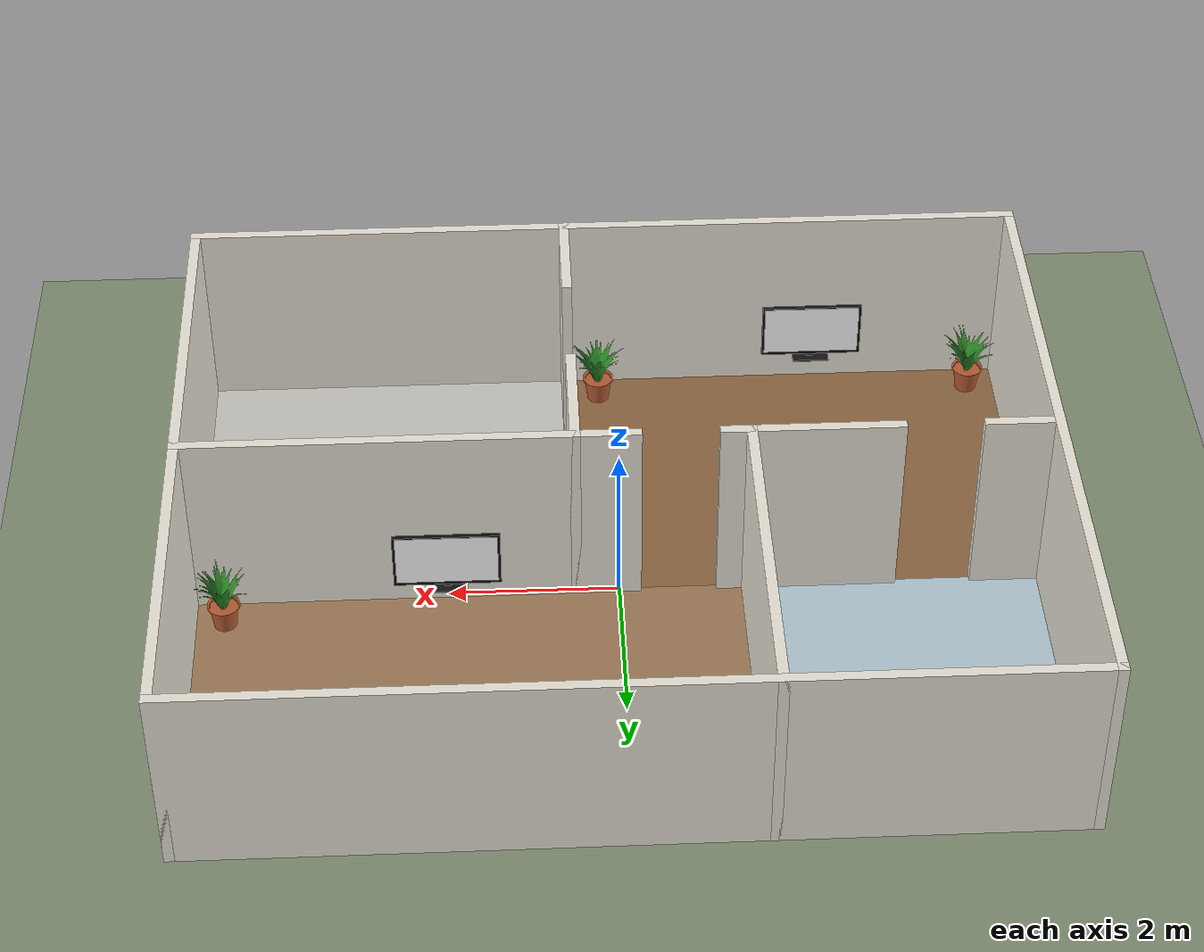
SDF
<sdf version="1.9">
 <world name="house">
  <physics name="3ms" type="ignored">
   <max_step_size>0.003</max_step_size>
   <real_time_factor>1.0</real_time_factor>
   <real_time_update_rate>333.3333</real_time_update_rate>
  </physics>
  <plugin name="gz::sim::systems::Physics" filename="gz-sim-physics-system"/>
  <plugin name="gz::sim::systems::UserCommands" filename="gz-sim-user-commands-system"/>
  <plugin name="gz::sim::systems::SceneBroadcaster" filename="gz-sim-scene-broadcaster-system"/>
  <plugin name="gz::sim::systems::Contact" filename="gz-sim-contact-system"/>
  <gravity>0 0 -9.8</gravity>
  <magnetic_field>6e-06 2.3e-05 -4.2e-05</magnetic_field>
  <atmosphere type="adiabatic"/>
  <scene>
   <ambient>0.6 0.6 0.6 1</ambient>
   <background>0.75 0.8 0.85 1</background>
   <shadows>false</shadows>
   <grid>false</grid>
  </scene>
  <light name="sun" type="directional">
   <cast_shadows>false</cast_shadows>
   <pose>0 0 10 0 0 0</pose>
   <diffuse>0.85 0.85 0.82 1</diffuse>
   <specular>0.2 0.2 0.2 1</specular>
   <direction>-0.3 0.2 -0.9</direction>
  </light>
  <model name="ground_plane">
   <static>true</static>
   <link name="link">
    <collision name="collision">
     <geometry><plane><normal>0 0 1</normal><size>40 40</size></plane></geometry>
    </collision>
    <visual name="visual">
     <geometry><plane><normal>0 0 1</normal><size>40 40</size></plane></geometry>
     <material><ambient>0.5 0.55 0.45 1</ambient><diffuse>0.5 0.55 0.45 1</diffuse></material>
    </visual>
   </link>
  </model>
  <model name="floor_living">
   <static>true</static>
   <pose>-2.25 -2 0.005 0 0 0</pose>
   <link name="link">
    <visual name="visual">
     <geometry><box><size>5.5 4 0.01</size></box></geometry>
     <material>
      <ambient>0.55 0.4 0.26 1</ambient>
      <diffuse>0.55 0.4 0.26 1</diffuse>
      <specular>0.1 0.1 0.1 1</specular>
     </material>
    </visual>
   </link>
  </model>
  <model name="floor_kitchen">
   <static>true</static>
   <pose>2.75 -2 0.005 0 0 0</pose>
   <link name="link">
    <visual name="visual">
     <geometry><box><size>4.5 4 0.01</size></box></geometry>
     <material>
      <ambient>0.78 0.77 0.74 1</ambient>
      <diffuse>0.78 0.77 0.74 1</diffuse>
      <specular>0.1 0.1 0.1 1</specular>
     </material>
    </visual>
   </link>
  </model>
  <model name="floor_bathroom">
   <static>true</static>
   <pose>-3.25 2 0.005 0 0 0</pose>
   <link name="link">
    <visual name="visual">
     <geometry><box><size>3.5 4 0.01</size></box></geometry>
     <material>
      <ambient>0.7 0.78 0.82 1</ambient>
      <diffuse>0.7 0.78 0.82 1</diffuse>
      <specular>0.1 0.1 0.1 1</specular>
     </material>
    </visual>
   </link>
  </model>
  <model name="floor_bedroom">
   <static>true</static>
   <pose>1.75 2 0.005 0 0 0</pose>
   <link name="link">
    <visual name="visual">
     <geometry><box><size>6.5 4 0.01</size></box></geometry>
     <material>
      <ambient>0.62 0.48 0.34 1</ambient>
      <diffuse>0.62 0.48 0.34 1</diffuse>
      <specular>0.1 0.1 0.1 1</specular>
     </material>
    </visual>
   </link>
  </model>
  <model name="wall_0">
   <static>true</static>
   <pose>0 -4 1.2 0 0 0</pose>
   <link name="link">
    <collision name="collision"><geometry><box><size>10.12 0.12 2.4</size></box></geometry></collision>
    <visual name="visual">
     <geometry><box><size>10.12 0.12 2.4</size></box></geometry>
     <material>
      <ambient>0.85 0.83 0.78 1</ambient>
      <diffuse>0.92 0.90 0.85 1</diffuse>
      <specular>0.05 0.05 0.05 1</specular>
     </material>
    </visual>
   </link>
  </model>
  <model name="wall_1">
   <static>true</static>
   <pose>0 4 1.2 0 0 0</pose>
   <link name="link">
    <collision name="collision"><geometry><box><size>10.12 0.12 2.4</size></box></geometry></collision>
    <visual name="visual">
     <geometry><box><size>10.12 0.12 2.4</size></box></geometry>
     <material>
      <ambient>0.85 0.83 0.78 1</ambient>
      <diffuse>0.92 0.90 0.85 1</diffuse>
      <specular>0.05 0.05 0.05 1</specular>
     </material>
    </visual>
   </link>
  </model>
  <model name="wall_2">
   <static>true</static>
   <pose>-5 0 1.2 0 0 1.5708</pose>
   <link name="link">
    <collision name="collision"><geometry><box><size>8.12 0.12 2.4</size></box></geometry></collision>
    <visual name="visual">
     <geometry><box><size>8.12 0.12 2.4</size></box></geometry>
     <material>
      <ambient>0.85 0.83 0.78 1</ambient>
      <diffuse>0.92 0.90 0.85 1</diffuse>
      <specular>0.05 0.05 0.05 1</specular>
     </material>
    </visual>
   </link>
  </model>
  <model name="wall_3">
   <static>true</static>
   <pose>5 0 1.2 0 0 1.5708</pose>
   <link name="link">
    <collision name="collision"><geometry><box><size>8.12 0.12 2.4</size></box></geometry></collision>
    <visual name="visual">
     <geometry><box><size>8.12 0.12 2.4</size></box></geometry>
     <material>
      <ambient>0.85 0.83 0.78 1</ambient>
      <diffuse>0.92 0.90 0.85 1</diffuse>
      <specular>0.05 0.05 0.05 1</specular>
     </material>
    </visual>
   </link>
  </model>
  <model name="wall_4">
   <static>true</static>
   <pose>-4.6 0 1.2 0 0 0</pose>
   <link name="link">
    <collision name="collision"><geometry><box><size>0.92 0.12 2.4</size></box></geometry></collision>
    <visual name="visual">
     <geometry><box><size>0.92 0.12 2.4</size></box></geometry>
     <material>
      <ambient>0.85 0.83 0.78 1</ambient>
      <diffuse>0.92 0.90 0.85 1</diffuse>
      <specular>0.05 0.05 0.05 1</specular>
     </material>
    </visual>
   </link>
  </model>
  <model name="wall_5">
   <static>true</static>
   <pose>-2.2 0 1.2 0 0 0</pose>
   <link name="link">
    <collision name="collision"><geometry><box><size>2.12 0.12 2.4</size></box></geometry></collision>
    <visual name="visual">
     <geometry><box><size>2.12 0.12 2.4</size></box></geometry>
     <material>
      <ambient>0.85 0.83 0.78 1</ambient>
      <diffuse>0.92 0.90 0.85 1</diffuse>
      <specular>0.05 0.05 0.05 1</specular>
     </material>
    </visual>
   </link>
  </model>
  <model name="wall_6">
   <static>true</static>
   <pose>2.4 0 1.2 0 0 0</pose>
   <link name="link">
    <collision name="collision"><geometry><box><size>5.32 0.12 2.4</size></box></geometry></collision>
    <visual name="visual">
     <geometry><box><size>5.32 0.12 2.4</size></box></geometry>
     <material>
      <ambient>0.85 0.83 0.78 1</ambient>
      <diffuse>0.92 0.90 0.85 1</diffuse>
      <specular>0.05 0.05 0.05 1</specular>
     </material>
    </visual>
   </link>
  </model>
  <model name="wall_7">
   <static>true</static>
   <pose>0.5 -3.4 1.2 0 0 1.5708</pose>
   <link name="link">
    <collision name="collision"><geometry><box><size>1.32 0.12 2.4</size></box></geometry></collision>
    <visual name="visual">
     <geometry><box><size>1.32 0.12 2.4</size></box></geometry>
     <material>
      <ambient>0.85 0.83 0.78 1</ambient>
      <diffuse>0.92 0.90 0.85 1</diffuse>
      <specular>0.05 0.05 0.05 1</specular>
     </material>
    </visual>
   </link>
  </model>
  <model name="wall_8">
   <static>true</static>
   <pose>0.5 -0.7 1.2 0 0 1.5708</pose>
   <link name="link">
    <collision name="collision"><geometry><box><size>1.52 0.12 2.4</size></box></geometry></collision>
    <visual name="visual">
     <geometry><box><size>1.52 0.12 2.4</size></box></geometry>
     <material>
      <ambient>0.85 0.83 0.78 1</ambient>
      <diffuse>0.92 0.90 0.85 1</diffuse>
      <specular>0.05 0.05 0.05 1</specular>
     </material>
    </visual>
   </link>
  </model>
  <model name="wall_9">
   <static>true</static>
   <pose>-1.5 2 1.2 0 0 1.5708</pose>
   <link name="link">
    <collision name="collision"><geometry><box><size>4.12 0.12 2.4</size></box></geometry></collision>
    <visual name="visual">
     <geometry><box><size>4.12 0.12 2.4</size></box></geometry>
     <material>
      <ambient>0.85 0.83 0.78 1</ambient>
      <diffuse>0.92 0.90 0.85 1</diffuse>
      <specular>0.05 0.05 0.05 1</specular>
     </material>
    </visual>
   </link>
  </model>
  <include>
   <name>tv_1</name>
   <uri>model://tv</uri>
   <pose>-2.6 -3.75 0.45 0 0 1.5708</pose>
   <static>true</static>
   <plugin filename="gz-sim-label-system" name="gz::sim::systems::Label"><label>62</label></plugin>
  </include>
  <include>
   <name>potted_plant_1</name>
   <uri>model://potted_plant</uri>
   <pose>-4.6 -3.6 0 0 0 0</pose>
   <static>true</static>
   <plugin filename="gz-sim-label-system" name="gz::sim::systems::Label"><label>58</label></plugin>
  </include>
  <include>
   <name>potted_plant_2</name>
   <uri>model://potted_plant</uri>
   <pose>0.1 -3.6 0 0 0 1</pose>
   <static>true</static>
   <plugin filename="gz-sim-label-system" name="gz::sim::systems::Label"><label>58</label></plugin>
  </include>
  <include>
   <name>tv_2</name>
   <uri>model://tv</uri>
   <pose>2 0.35 0.45 0 0 1.5708</pose>
   <static>true</static>
   <plugin filename="gz-sim-label-system" name="gz::sim::systems::Label"><label>62</label></plugin>
  </include>
  <include>
   <name>potted_plant_3</name>
   <uri>model://potted_plant</uri>
   <pose>4.6 0.4 0 0 0 2</pose>
   <static>true</static>
   <plugin filename="gz-sim-label-system" name="gz::sim::systems::Label"><label>58</label></plugin>
  </include>
 </world>
</sdf>

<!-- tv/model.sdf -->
<!-- 55-inch flat-screen TV. Model origin: centre of the bottom of the foot, screen faces +X. -->
<sdf version="1.9">
  <model name="tv">
    <static>true</static>
    <link name="link">
      <collision name="collision">
        <pose>0 0 0.42 0 0 0</pose>
        <geometry><box><size>0.06 1.24 0.72</size></box></geometry>
      </collision>
      <visual name="foot">
        <pose>0 0 0.01 0 0 0</pose>
        <geometry><box><size>0.22 0.45 0.02</size></box></geometry>
        <material><ambient>0.05 0.05 0.05 1</ambient><diffuse>0.08 0.08 0.08 1</diffuse></material>
      </visual>
      <visual name="neck">
        <pose>-0.01 0 0.05 0 0 0</pose>
        <geometry><box><size>0.04 0.08 0.08</size></box></geometry>
        <material><ambient>0.05 0.05 0.05 1</ambient><diffuse>0.08 0.08 0.08 1</diffuse></material>
      </visual>
      <visual name="bezel">
        <pose>0 0 0.42 0 0 0</pose>
        <geometry><box><size>0.05 1.24 0.72</size></box></geometry>
        <material>
          <ambient>0.02 0.02 0.02 1</ambient>
          <diffuse>0.03 0.03 0.03 1</diffuse>
          <specular>0.3 0.3 0.3 1</specular>
          <pbr><metal><metalness>0.2</metalness><roughness>0.3</roughness></metal></pbr>
        </material>
      </visual>
      <visual name="screen">
        <pose>0.0255 0 0.43 0 0 0</pose>
        <geometry><box><size>0.001 1.18 0.664</size></box></geometry>
        <material>
          <ambient>1 1 1 1</ambient>
          <diffuse>1 1 1 1</diffuse>
          <emissive>0.6 0.6 0.6 1</emissive>
          <pbr>
            <metal>
              <albedo_map>model://tv/materials/textures/screen.png</albedo_map>
              <emissive_map>model://tv/materials/textures/screen.png</emissive_map>
              <metalness>0.0</metalness>
              <roughness>0.4</roughness>
            </metal>
          </pbr>
        </material>
      </visual>
    </link>
  </model>
</sdf>

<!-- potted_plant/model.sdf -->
<sdf version="1.9">
  <model name="potted_plant">
    <static>true</static>
    <link name="link">
      <collision name="collision">
        <pose>0 0 0.2 0 0 0</pose>
        <geometry><cylinder><radius>0.19</radius><length>0.4</length></cylinder></geometry>
      </collision>
      <visual name="pot">
        <geometry><mesh><uri>model://potted_plant/meshes/pot.obj</uri></mesh></geometry>
        <material>
          <ambient>0.55 0.27 0.16 1</ambient>
          <diffuse>0.72 0.36 0.2 1</diffuse>
          <specular>0.05 0.05 0.05 1</specular>
          <pbr><metal><metalness>0.0</metalness><roughness>0.85</roughness></metal></pbr>
        </material>
      </visual>
      <visual name="leaves">
        <geometry><mesh><uri>model://potted_plant/meshes/leaves.obj</uri></mesh></geometry>
        <material>
          <ambient>0.08 0.3 0.08 1</ambient>
          <diffuse>0.15 0.5 0.13 1</diffuse>
          <specular>0.1 0.15 0.1 1</specular>
          <pbr><metal><metalness>0.0</metalness><roughness>0.6</roughness></metal></pbr>
        </material>
      </visual>
    </link>
  </model>
</sdf>
